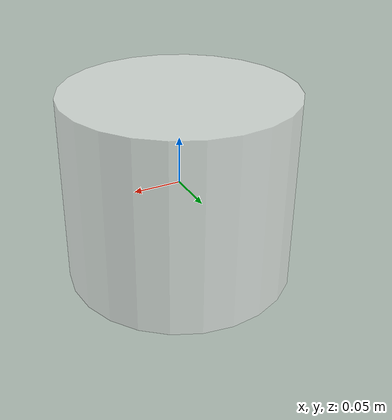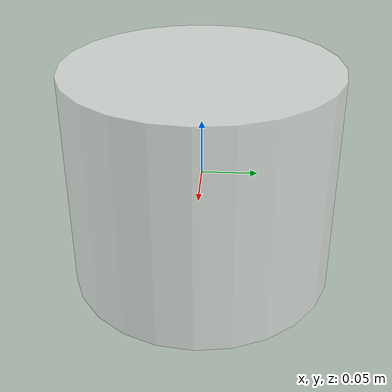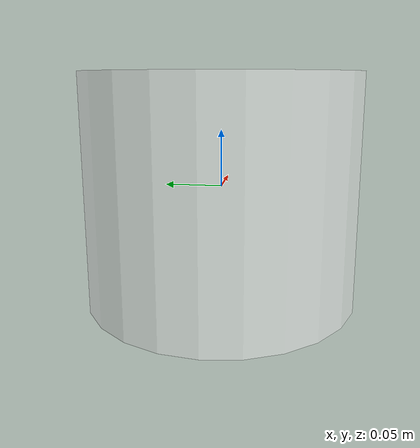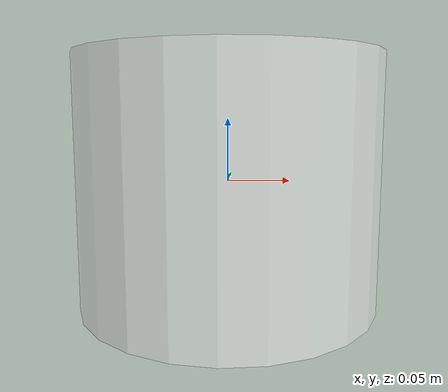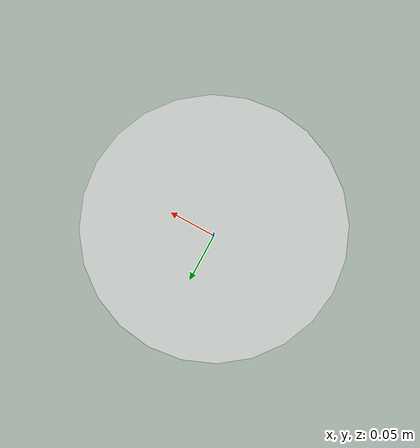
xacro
<?xml version="1.0"?>
<robot xmlns:xacro="http://ros.org/wiki/xacro" name="first_robot">
    <xacro:macro name="base_link" params= "radius length">
        <!-- 机器人身体部分 -->

        <link name="base_link">
            <visual>
            <!-- 沿着自己几何中心的偏移和旋转 -->
                <origin xyz="0.0 0.0 0.0" rpy="0.0 0.0 0.0"/>
            <!-- 几何形状 -->
                <geometry>
                <!-- 圆柱体           半径               高度 -->
                    <cylinder radius="${radius}" length="${length}"/>
                </geometry>
                <!-- 材质颜色 -->
                <material name="white">
                    <color rgba="1.0 1.0 1.0 0.5"/>
                </material>
            </visual>

    </link>
    </xacro:macro>

    <!-- 机器人imu部件，惯性测量传感器 -->
    <xacro:macro name="imu_link" params='imu_name xyz'>
    <link name="${imu_name}_link">
        <visual>
          <!-- 沿着自己几何中心的偏移和旋转 -->
            <origin xyz="0.0 0.0 0.0" rpy="0.0 0.0 0.0"/>
        <!-- 几何形状 -->
            <geometry>
            <!-- 圆柱体           半径               高度 -->
               <box size="0.02 0.02 0.02"/>
            </geometry>
            <!-- 材质颜色 -->
            <material name="black">
                <color rgba="0.0 0.0 1.0 0.5"/>
            </material>
        </visual>

    </link>
    <!-- 机器人关节，用于组合机器人的部件 -->
         <joint name="${imu_name}_joint" type="fixed">
            <parent link="base_link"/>
            <child link="${imu_name}_link"/>
            <origin xyz="${xyz}" rpy="0.0 0.0 0.0"/>

        </joint>
    </xacro:macro>

      <!-- 调用 base_link 和 imu_link 宏 -->
    <xacro:base_link radius="0.12" length="0.2"/>
    <xacro:imu_link imu_name="imu_up" xyz="0.0 0.0 0.03"/>
    <xacro:imu_link imu_name="imu_down" xyz="0.0 0.0 -0.03"/>

</robot>
